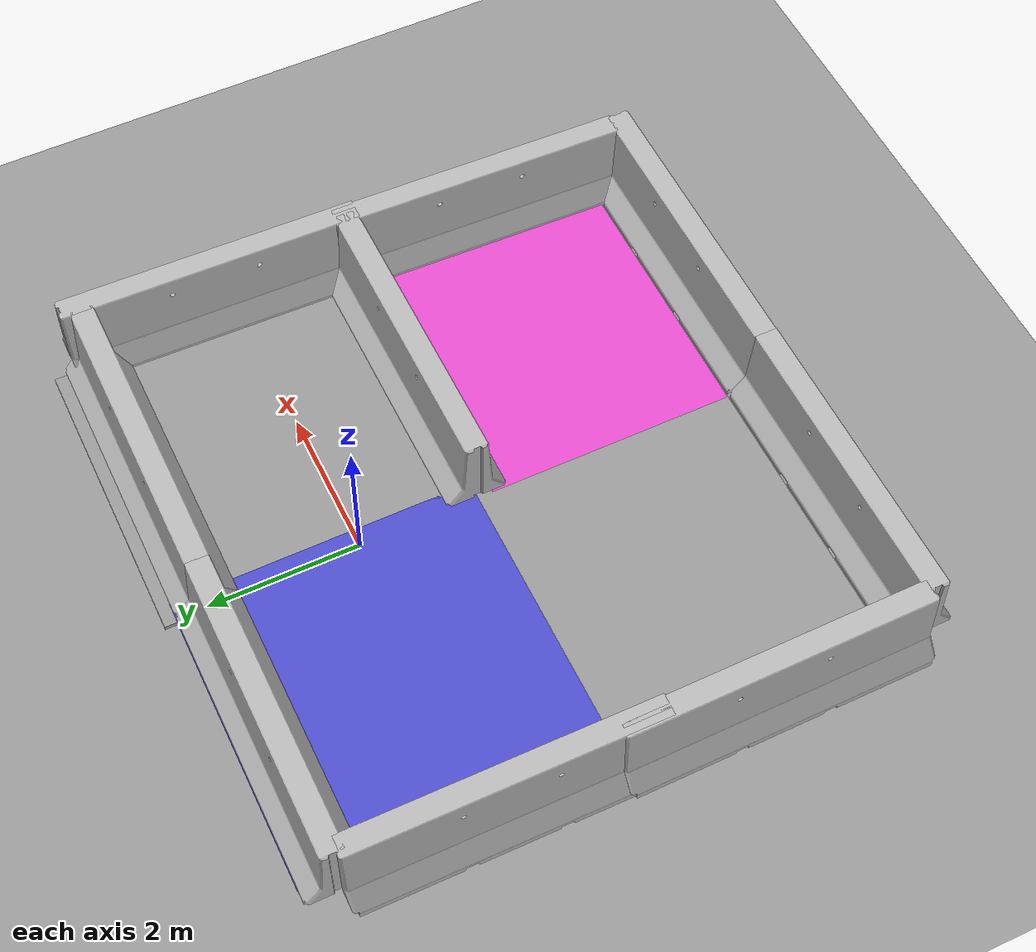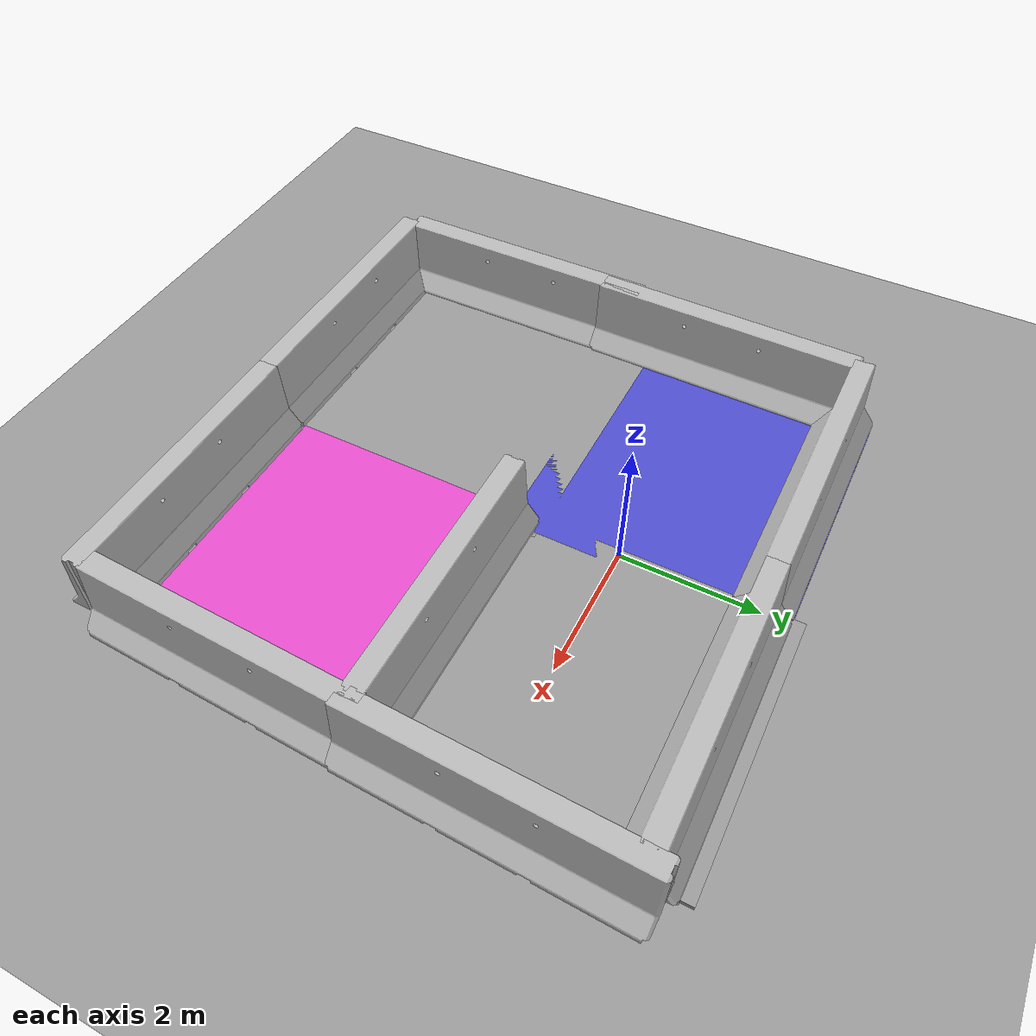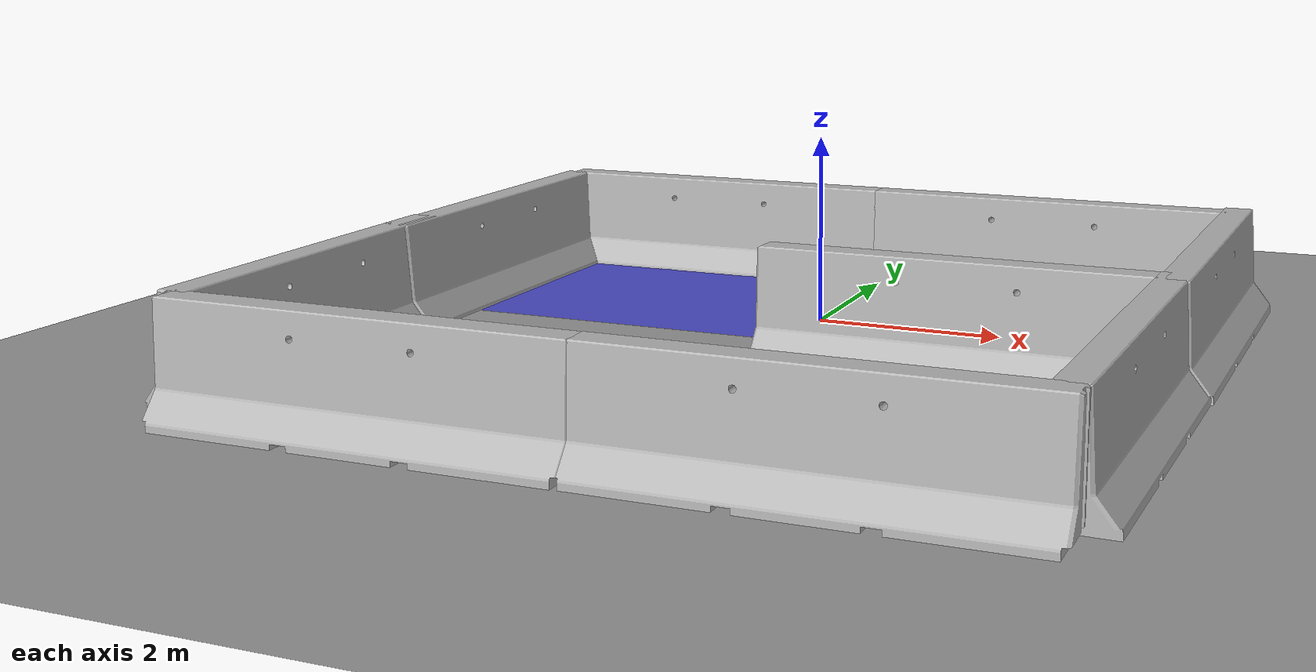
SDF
<sdf version="1.7">
 <world name="default">
  <light name="sun" type="directional">
   <pose>0 0 10 0 -0 0</pose>
   <diffuse>0.8 0.8 0.8 1</diffuse>
   <specular>0.2 0.2 0.2 1</specular>
   <attenuation>
    <range>1000</range>
    <constant>0.9</constant>
    <linear>0.01</linear>
    <quadratic>0.001</quadratic>
   </attenuation>
   <direction>0.5 0.1 -0.9</direction>
   <spot><inner_angle>0</inner_angle><outer_angle>0</outer_angle><falloff>0</falloff></spot>
  </light>
  <scene><ambient>0.4 0.4 0.4 1</ambient><background>0.7 0.7 0.7 1</background><shadows>1</shadows></scene>
  <physics type="ode">
   <max_step_size>0.001</max_step_size>
   <real_time_factor>1</real_time_factor>
   <real_time_update_rate>1000</real_time_update_rate>
  </physics>
  <model name="jersey_barrier">
   <static>1</static>
   <link name="link">
    <visual name="visual">
     <geometry><mesh><uri>model://jersey_barrier/meshes/jersey_barrier.dae</uri></mesh></geometry>
    </visual>
    <collision name="upright">
     <pose>0 0 0.5715 0 -0 0</pose>
     <geometry><box><size>4.06542 0.3063 1.143</size></box></geometry>
    </collision>
    <collision name="base">
     <pose>0 0 0.032258 0 -0 0</pose>
     <geometry><box><size>4.06542 0.8107 0.064516</size></box></geometry>
    </collision>
    <collision name="base2">
     <pose>0 0 0.1 0 -0 0</pose>
     <geometry><box><size>4.06542 0.65 0.1</size></box></geometry>
    </collision>
    <collision name="base3">
     <pose>0 0 0.2 0 -0 0</pose>
     <geometry><box><size>4.06542 0.5 0.1</size></box></geometry>
    </collision>
    <collision name="left-angle">
     <pose>0 -0.224 0.2401 0.9 -0 0</pose>
     <geometry><box><size>4.06542 0.5 0.064516</size></box></geometry>
    </collision>
    <collision name="right-angle">
     <pose>0 0.224 0.2401 -0.9 0 0</pose>
     <geometry><box><size>4.06542 0.5 0.064516</size></box></geometry>
    </collision>
    <velocity_decay><linear>0</linear><angular>0</angular></velocity_decay>
   </link>
   <pose>-4.01982 -3.47942 0 0 0 -1.56814</pose>
  </model>
  <model name="ground_plane_0">
   <static>1</static>
   <link name="link">
    <collision name="collision">
     <geometry><plane><normal>0 0 1</normal><size>100 100</size></plane></geometry>
     <surface><friction><ode><mu>100</mu><mu2>50</mu2></ode></friction></surface>
    </collision>
    <visual name="visual">
     <cast_shadows>0</cast_shadows>
     <geometry><plane><normal>0 0 1</normal><size>100 100</size></plane></geometry>
     <material>
      <script><uri>file://media/materials/scripts/gazebo.material</uri><name>Gazebo/Grey</name></script>
     </material>
    </visual>
    <velocity_decay><linear>0</linear><angular>0</angular></velocity_decay>
   </link>
   <pose>0.497681 0 0 0 -0 0</pose>
  </model>
  <spherical_coordinates>
   <surface_model>EARTH_WGS84</surface_model>
   <latitude_deg>0</latitude_deg>
   <longitude_deg>0</longitude_deg>
   <elevation>0</elevation>
   <heading_deg>0</heading_deg>
  </spherical_coordinates>
  <model name="jersey_barrier_0">
   <static>1</static>
   <link name="link">
    <visual name="visual">
     <geometry><mesh><uri>model://jersey_barrier/meshes/jersey_barrier.dae</uri></mesh></geometry>
    </visual>
    <collision name="upright">
     <pose>0 0 0.5715 0 -0 0</pose>
     <geometry><box><size>4.06542 0.3063 1.143</size></box></geometry>
    </collision>
    <collision name="base">
     <pose>0 0 0.032258 0 -0 0</pose>
     <geometry><box><size>4.06542 0.8107 0.064516</size></box></geometry>
    </collision>
    <collision name="base2">
     <pose>0 0 0.1 0 -0 0</pose>
     <geometry><box><size>4.06542 0.65 0.1</size></box></geometry>
    </collision>
    <collision name="base3">
     <pose>0 0 0.2 0 -0 0</pose>
     <geometry><box><size>4.06542 0.5 0.1</size></box></geometry>
    </collision>
    <collision name="left-angle">
     <pose>0 -0.224 0.2401 0.9 -0 0</pose>
     <geometry><box><size>4.06542 0.5 0.064516</size></box></geometry>
    </collision>
    <collision name="right-angle">
     <pose>0 0.224 0.2401 -0.9 0 0</pose>
     <geometry><box><size>4.06542 0.5 0.064516</size></box></geometry>
    </collision>
    <velocity_decay><linear>0</linear><angular>0</angular></velocity_decay>
   </link>
   <pose>-3.97808 -0.070198 0 0 -0 1.56062</pose>
  </model>
  <model name="jersey_barrier_1">
   <static>1</static>
   <link name="link">
    <visual name="visual">
     <geometry><mesh><uri>model://jersey_barrier/meshes/jersey_barrier.dae</uri></mesh></geometry>
    </visual>
    <collision name="upright">
     <pose>0 0 0.5715 0 -0 0</pose>
     <geometry><box><size>4.06542 0.3063 1.143</size></box></geometry>
    </collision>
    <collision name="base">
     <pose>0 0 0.032258 0 -0 0</pose>
     <geometry><box><size>4.06542 0.8107 0.064516</size></box></geometry>
    </collision>
    <collision name="base2">
     <pose>0 0 0.1 0 -0 0</pose>
     <geometry><box><size>4.06542 0.65 0.1</size></box></geometry>
    </collision>
    <collision name="base3">
     <pose>0 0 0.2 0 -0 0</pose>
     <geometry><box><size>4.06542 0.5 0.1</size></box></geometry>
    </collision>
    <collision name="left-angle">
     <pose>0 -0.224 0.2401 0.9 -0 0</pose>
     <geometry><box><size>4.06542 0.5 0.064516</size></box></geometry>
    </collision>
    <collision name="right-angle">
     <pose>0 0.224 0.2401 -0.9 0 0</pose>
     <geometry><box><size>4.06542 0.5 0.064516</size></box></geometry>
    </collision>
    <velocity_decay><linear>0</linear><angular>0</angular></velocity_decay>
   </link>
   <pose>-2 2 0 0 -0 0</pose>
  </model>
  <model name="jersey_barrier_2">
   <static>1</static>
   <link name="link">
    <visual name="visual">
     <geometry><mesh><uri>model://jersey_barrier/meshes/jersey_barrier.dae</uri></mesh></geometry>
    </visual>
    <collision name="upright">
     <pose>0 0 0.5715 0 -0 0</pose>
     <geometry><box><size>4.06542 0.3063 1.143</size></box></geometry>
    </collision>
    <collision name="base">
     <pose>0 0 0.032258 0 -0 0</pose>
     <geometry><box><size>4.06542 0.8107 0.064516</size></box></geometry>
    </collision>
    <collision name="base2">
     <pose>0 0 0.1 0 -0 0</pose>
     <geometry><box><size>4.06542 0.65 0.1</size></box></geometry>
    </collision>
    <collision name="base3">
     <pose>0 0 0.2 0 -0 0</pose>
     <geometry><box><size>4.06542 0.5 0.1</size></box></geometry>
    </collision>
    <collision name="left-angle">
     <pose>0 -0.224 0.2401 0.9 -0 0</pose>
     <geometry><box><size>4.06542 0.5 0.064516</size></box></geometry>
    </collision>
    <collision name="right-angle">
     <pose>0 0.224 0.2401 -0.9 0 0</pose>
     <geometry><box><size>4.06542 0.5 0.064516</size></box></geometry>
    </collision>
    <velocity_decay><linear>0</linear><angular>0</angular></velocity_decay>
   </link>
   <pose>-2 -5.5744 0 0 -0 0</pose>
  </model>
  <model name="jersey_barrier_3">
   <static>1</static>
   <link name="link">
    <visual name="visual">
     <geometry><mesh><uri>model://jersey_barrier/meshes/jersey_barrier.dae</uri></mesh></geometry>
    </visual>
    <collision name="upright">
     <pose>0 0 0.5715 0 -0 0</pose>
     <geometry><box><size>4.06542 0.3063 1.143</size></box></geometry>
    </collision>
    <collision name="base">
     <pose>0 0 0.032258 0 -0 0</pose>
     <geometry><box><size>4.06542 0.8107 0.064516</size></box></geometry>
    </collision>
    <collision name="base2">
     <pose>0 0 0.1 0 -0 0</pose>
     <geometry><box><size>4.06542 0.65 0.1</size></box></geometry>
    </collision>
    <collision name="base3">
     <pose>0 0 0.2 0 -0 0</pose>
     <geometry><box><size>4.06542 0.5 0.1</size></box></geometry>
    </collision>
    <collision name="left-angle">
     <pose>0 -0.224 0.2401 0.9 -0 0</pose>
     <geometry><box><size>4.06542 0.5 0.064516</size></box></geometry>
    </collision>
    <collision name="right-angle">
     <pose>0 0.224 0.2401 -0.9 0 0</pose>
     <geometry><box><size>4.06542 0.5 0.064516</size></box></geometry>
    </collision>
    <velocity_decay><linear>0</linear><angular>0</angular></velocity_decay>
   </link>
   <pose>2 -5.56737 0 0 -0 0</pose>
  </model>
  <model name="jersey_barrier_4">
   <static>1</static>
   <link name="link">
    <visual name="visual">
     <geometry><mesh><uri>model://jersey_barrier/meshes/jersey_barrier.dae</uri></mesh></geometry>
    </visual>
    <collision name="upright">
     <pose>0 0 0.5715 0 -0 0</pose>
     <geometry><box><size>4.06542 0.3063 1.143</size></box></geometry>
    </collision>
    <collision name="base">
     <pose>0 0 0.032258 0 -0 0</pose>
     <geometry><box><size>4.06542 0.8107 0.064516</size></box></geometry>
    </collision>
    <collision name="base2">
     <pose>0 0 0.1 0 -0 0</pose>
     <geometry><box><size>4.06542 0.65 0.1</size></box></geometry>
    </collision>
    <collision name="base3">
     <pose>0 0 0.2 0 -0 0</pose>
     <geometry><box><size>4.06542 0.5 0.1</size></box></geometry>
    </collision>
    <collision name="left-angle">
     <pose>0 -0.224 0.2401 0.9 -0 0</pose>
     <geometry><box><size>4.06542 0.5 0.064516</size></box></geometry>
    </collision>
    <collision name="right-angle">
     <pose>0 0.224 0.2401 -0.9 0 0</pose>
     <geometry><box><size>4.06542 0.5 0.064516</size></box></geometry>
    </collision>
    <velocity_decay><linear>0</linear><angular>0</angular></velocity_decay>
   </link>
   <pose>2 2 0 0 -0 0</pose>
  </model>
  <model name="jersey_barrier_5">
   <static>1</static>
   <link name="link">
    <visual name="visual">
     <geometry><mesh><uri>model://jersey_barrier/meshes/jersey_barrier.dae</uri></mesh></geometry>
    </visual>
    <collision name="upright">
     <pose>0 0 0.5715 0 -0 0</pose>
     <geometry><box><size>4.06542 0.3063 1.143</size></box></geometry>
    </collision>
    <collision name="base">
     <pose>0 0 0.032258 0 -0 0</pose>
     <geometry><box><size>4.06542 0.8107 0.064516</size></box></geometry>
    </collision>
    <collision name="base2">
     <pose>0 0 0.1 0 -0 0</pose>
     <geometry><box><size>4.06542 0.65 0.1</size></box></geometry>
    </collision>
    <collision name="base3">
     <pose>0 0 0.2 0 -0 0</pose>
     <geometry><box><size>4.06542 0.5 0.1</size></box></geometry>
    </collision>
    <collision name="left-angle">
     <pose>0 -0.224 0.2401 0.9 -0 0</pose>
     <geometry><box><size>4.06542 0.5 0.064516</size></box></geometry>
    </collision>
    <collision name="right-angle">
     <pose>0 0.224 0.2401 -0.9 0 0</pose>
     <geometry><box><size>4.06542 0.5 0.064516</size></box></geometry>
    </collision>
    <velocity_decay><linear>0</linear><angular>0</angular></velocity_decay>
   </link>
   <pose>2 -1.59389 0 0 -0 0</pose>
  </model>
  <model name="jersey_barrier_6">
   <static>1</static>
   <link name="link">
    <visual name="visual">
     <geometry><mesh><uri>model://jersey_barrier/meshes/jersey_barrier.dae</uri></mesh></geometry>
    </visual>
    <collision name="upright">
     <pose>0 0 0.5715 0 -0 0</pose>
     <geometry><box><size>4.06542 0.3063 1.143</size></box></geometry>
    </collision>
    <collision name="base">
     <pose>0 0 0.032258 0 -0 0</pose>
     <geometry><box><size>4.06542 0.8107 0.064516</size></box></geometry>
    </collision>
    <collision name="base2">
     <pose>0 0 0.1 0 -0 0</pose>
     <geometry><box><size>4.06542 0.65 0.1</size></box></geometry>
    </collision>
    <collision name="base3">
     <pose>0 0 0.2 0 -0 0</pose>
     <geometry><box><size>4.06542 0.5 0.1</size></box></geometry>
    </collision>
    <collision name="left-angle">
     <pose>0 -0.224 0.2401 0.9 -0 0</pose>
     <geometry><box><size>4.06542 0.5 0.064516</size></box></geometry>
    </collision>
    <collision name="right-angle">
     <pose>0 0.224 0.2401 -0.9 0 0</pose>
     <geometry><box><size>4.06542 0.5 0.064516</size></box></geometry>
    </collision>
    <velocity_decay><linear>0</linear><angular>0</angular></velocity_decay>
   </link>
   <pose>3.94727 -3.44785 0 0 0 -1.59947</pose>
  </model>
  <model name="jersey_barrier_7">
   <static>1</static>
   <link name="link">
    <visual name="visual">
     <geometry><mesh><uri>model://jersey_barrier/meshes/jersey_barrier.dae</uri></mesh></geometry>
    </visual>
    <collision name="upright">
     <pose>0 0 0.5715 0 -0 0</pose>
     <geometry><box><size>4.06542 0.3063 1.143</size></box></geometry>
    </collision>
    <collision name="base">
     <pose>0 0 0.032258 0 -0 0</pose>
     <geometry><box><size>4.06542 0.8107 0.064516</size></box></geometry>
    </collision>
    <collision name="base2">
     <pose>0 0 0.1 0 -0 0</pose>
     <geometry><box><size>4.06542 0.65 0.1</size></box></geometry>
    </collision>
    <collision name="base3">
     <pose>0 0 0.2 0 -0 0</pose>
     <geometry><box><size>4.06542 0.5 0.1</size></box></geometry>
    </collision>
    <collision name="left-angle">
     <pose>0 -0.224 0.2401 0.9 -0 0</pose>
     <geometry><box><size>4.06542 0.5 0.064516</size></box></geometry>
    </collision>
    <collision name="right-angle">
     <pose>0 0.224 0.2401 -0.9 0 0</pose>
     <geometry><box><size>4.06542 0.5 0.064516</size></box></geometry>
    </collision>
    <velocity_decay><linear>0</linear><angular>0</angular></velocity_decay>
   </link>
   <pose>4.06175 0.24882 0 0 -0 1.54903</pose>
  </model>
  <model name="normal_terrain">
   <static>1</static>
   <pose>-1.70864 -3.13428 0 0 -0 0</pose>
   <link name="link">
    <collision name="collision">
     <geometry><box><size>4 4 0.1</size></box></geometry>
     <surface>
      <friction><ode><mu>1000.0</mu><mu2>1000.0</mu2><slip1>0.001</slip1><slip2>0.001</slip2></ode></friction>
     </surface>
    </collision>
    <visual name="visual">
     <geometry><box><size>4 4 0.1</size></box></geometry>
     <material><ambient>0.1 0.6 0.6 1</ambient><diffuse>0.6 0.6 0.6 1</diffuse></material>
    </visual>
   </link>
  </model>
  <model name="slippery_terrain">
   <static>1</static>
   <pose>-1.7979 0.412734 0 0 -0 0</pose>
   <link name="link">
    <collision name="collision">
     <geometry><box><size>4 4 0.1</size></box></geometry>
     <surface>
      <friction><ode><mu>0.1</mu><mu2>0.1</mu2><slip1>1.0</slip1><slip2>1.0</slip2></ode></friction>
     </surface>
    </collision>
    <visual name="visual">
     <geometry><box><size>4 4 0.1</size></box></geometry>
     <material><ambient>0.5 0.5 0.2 1</ambient><diffuse>0.3 0.3 0.8 1</diffuse></material>
    </visual>
   </link>
  </model>
  <gravity>0 0 -9.8</gravity>
  <magnetic_field>6e-06 2.3e-05 -4.2e-05</magnetic_field>
  <atmosphere type="adiabatic"/>
  <model name="slippery_terrain_clone">
   <static>1</static>
   <pose>1.96597 -3.45869 0 0 -0 0</pose>
   <link name="link">
    <collision name="collision">
     <geometry><box><size>4 3.34151 0.1</size></box></geometry>
     <surface>
      <friction><ode><mu>0.5</mu><mu2>0.5</mu2><slip1>0.01</slip1><slip2>0.01</slip2></ode></friction>
     </surface>
    </collision>
    <visual name="visual">
     <geometry><box><size>4 3.34151 0.1</size></box></geometry>
     <material><ambient>0.9 0.2 0.5 1</ambient><diffuse>0.9 0.3 0.8 1</diffuse></material>
    </visual>
   </link>
  </model>
  <model name="normal_terrain_clone">
   <static>1</static>
   <pose>1.9292 0.573477 0 0 -0 0</pose>
   <link name="link">
    <collision name="collision">
     <geometry><box><size>4 4 0.1</size></box></geometry>
     <surface>
      <friction><ode><mu>50.0</mu><mu2>50.0</mu2><slip1>0.05</slip1><slip2>0.05</slip2></ode></friction>
     </surface>
    </collision>
    <visual name="visual">
     <geometry><box><size>4 4 0.1</size></box></geometry>
     <material><ambient>0.2 0.7 0.1 1</ambient><diffuse>0.6 0.6 0.6 1</diffuse></material>
    </visual>
   </link>
  </model>
 </world>
</sdf>
